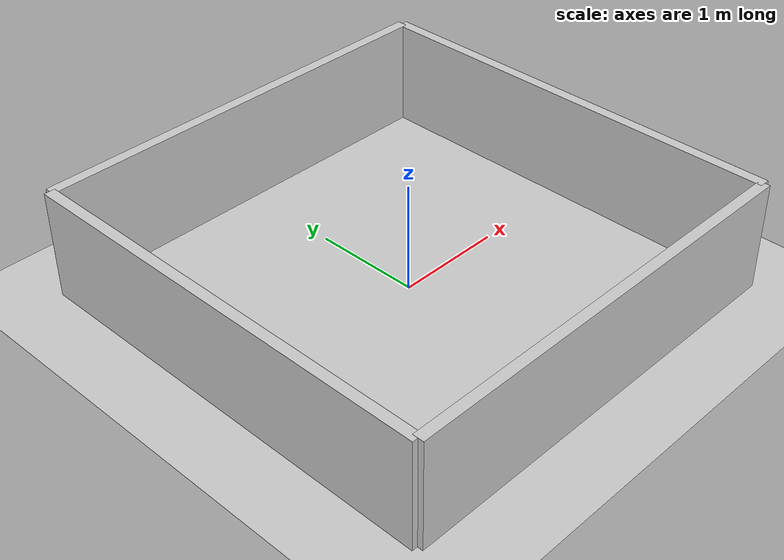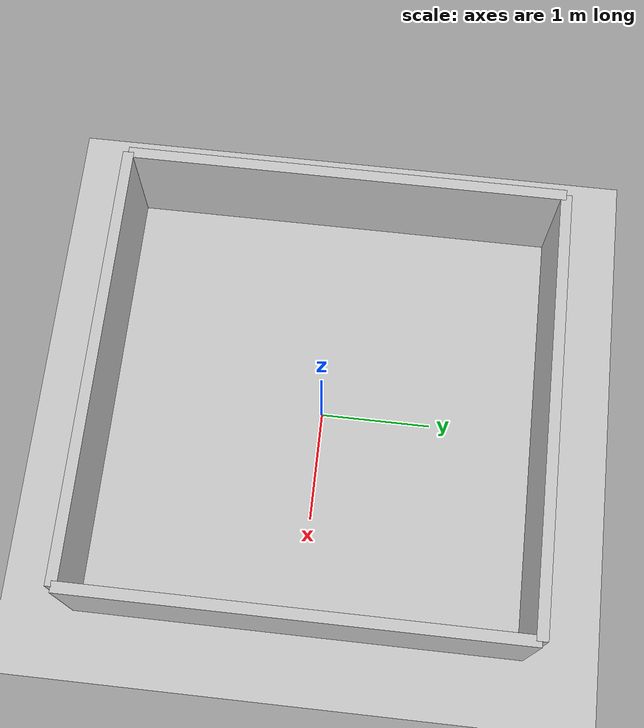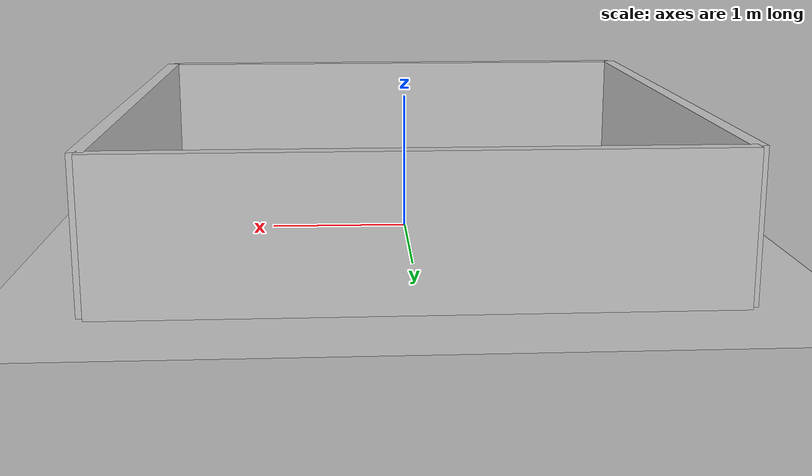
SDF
<?xml version="1.0" ?>

<sdf version="1.5">

  <world name="room">

    <!-- 조명 -->

    <include>

      <uri>model://sun</uri>

    </include>

    <!-- 바닥 -->

    <include>

      <uri>model://ground_plane</uri>

    </include>

    <!-- 전방 벽 (x=+2) -->

    <model name="wall_front">

      <static>true</static>

      <pose>2 0 0.5 0 0 0</pose>

      <link name="link">

        <collision name="collision">

          <geometry><box><size>0.1 4 1</size></box></geometry>

        </collision>

        <visual name="visual">

          <geometry><box><size>0.1 4 1</size></box></geometry>

          <material>

            <ambient>0.8 0.8 0.8 1</ambient>

          </material>

        </visual>

      </link>

    </model>

    <!-- 후방 벽 (x=-2) -->

    <model name="wall_back">

      <static>true</static>

      <pose>-2 0 0.5 0 0 0</pose>

      <link name="link">

        <collision name="collision">

          <geometry><box><size>0.1 4 1</size></box></geometry>

        </collision>

        <visual name="visual">

          <geometry><box><size>0.1 4 1</size></box></geometry>

          <material>

            <ambient>0.8 0.8 0.8 1</ambient>

          </material>

        </visual>

      </link>

    </model>

    <!-- 좌측 벽 (y=+2) -->

    <model name="wall_left">

      <static>true</static>

      <pose>0 2 0.5 0 0 0</pose>

      <link name="link">

        <collision name="collision">

          <geometry><box><size>4 0.1 1</size></box></geometry>

        </collision>

        <visual name="visual">

          <geometry><box><size>4 0.1 1</size></box></geometry>

          <material>

            <ambient>0.8 0.8 0.8 1</ambient>

          </material>

        </visual>

      </link>

    </model>

    <!-- 우측 벽 (y=-2) -->

    <model name="wall_right">

      <static>true</static>

      <pose>0 -2 0.5 0 0 0</pose>

      <link name="link">

        <collision name="collision">

          <geometry><box><size>4 0.1 1</size></box></geometry>

        </collision>

        <visual name="visual">

          <geometry><box><size>4 0.1 1</size></box></geometry>

          <material>

            <ambient>0.8 0.8 0.8 1</ambient>

          </material>

        </visual>

      </link>

    </model>

  </world>

</sdf>
